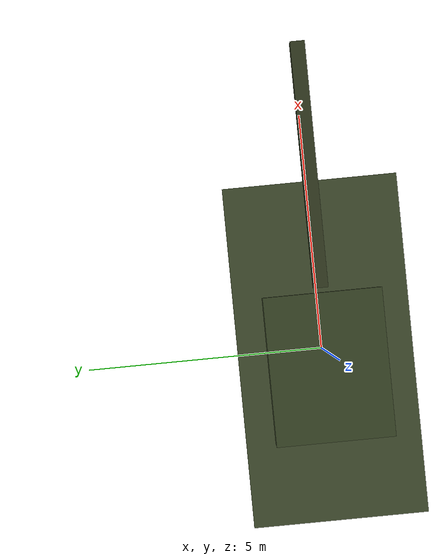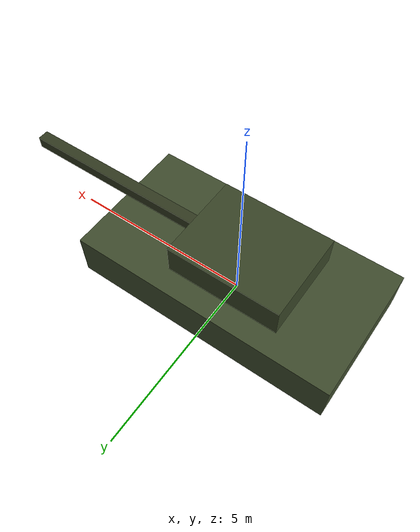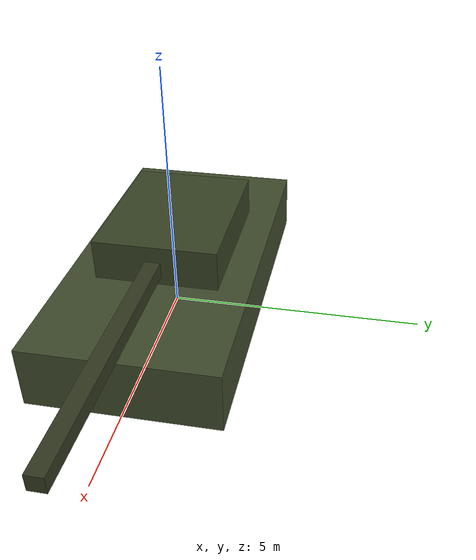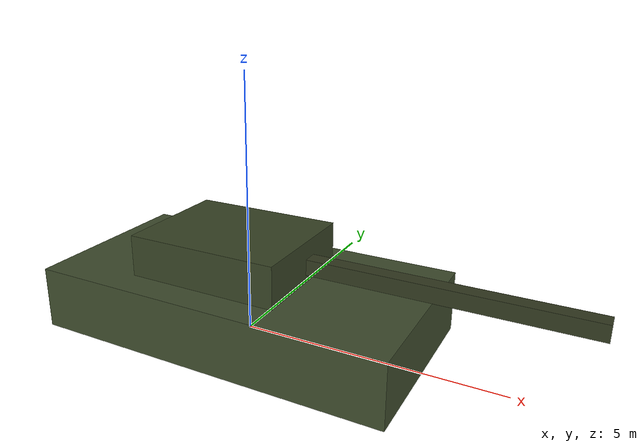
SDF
<?xml version="1.0" ?>
<sdf version="1.9">
  <model name="tank_t72">
    <static>true</static>
    <pose>0 0 0.6 0 0 0</pose>
    <link name="body">
      <!-- Hull: 7.0 x 3.6 x 1.2m -->
      <visual name="hull">
        <geometry><box><size>7.0 3.6 1.2</size></box></geometry>
        <material>
          <ambient>0.2 0.25 0.15 1</ambient>
          <diffuse>0.25 0.3 0.18 1</diffuse>
        </material>
      </visual>
      <!-- Turret: 3.0 x 2.4 x 0.8m, centered, offset slightly back -->
      <visual name="turret">
        <pose>-0.3 0 1.0 0 0 0</pose>
        <geometry><box><size>3.0 2.4 0.8</size></box></geometry>
        <material>
          <ambient>0.17 0.22 0.12 1</ambient>
          <diffuse>0.22 0.27 0.15 1</diffuse>
        </material>
      </visual>
      <!-- Gun barrel: 0.3 x 0.3 x 5.0m thin box, extending forward from turret -->
      <visual name="gun_barrel">
        <pose>3.8 0 1.0 0 0 0</pose>
        <geometry><box><size>5.0 0.3 0.3</size></box></geometry>
        <material>
          <ambient>0.15 0.18 0.1 1</ambient>
          <diffuse>0.2 0.23 0.13 1</diffuse>
        </material>
      </visual>
      <collision name="collision">
        <geometry><box><size>7.0 3.6 1.2</size></box></geometry>
      </collision>
    </link>
  </model>
</sdf>
